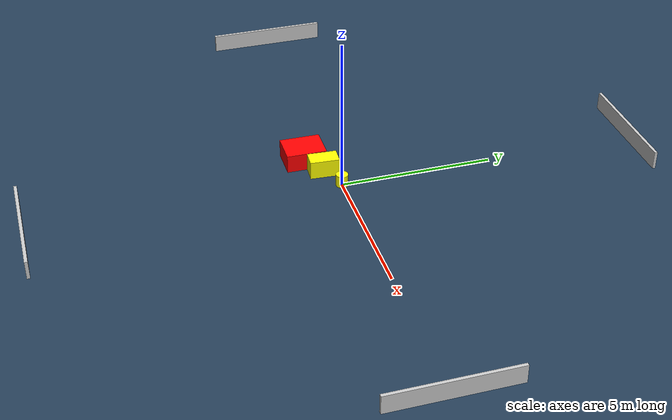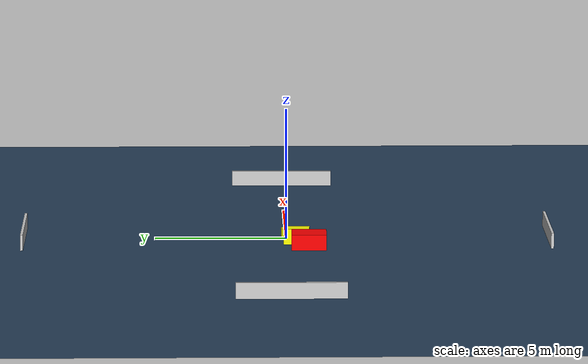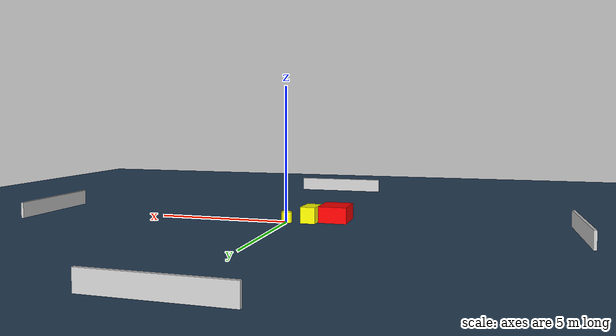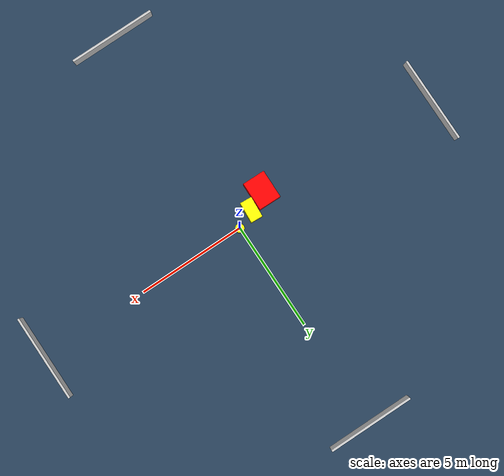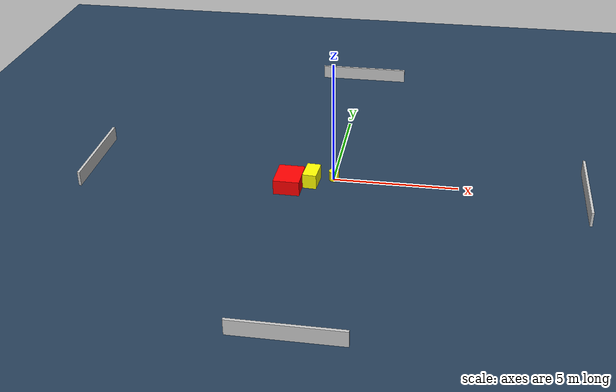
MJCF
<?xml version="1.0" ?>
<mujoco model="generated_environment">
  <option timestep="0.01" integrator="RK4" cone="elliptic"/>
  <default>
    <geom density="1"/>
  </default>
  <asset>
    <texture builtin="gradient" height="3072" name="skybox" rgb1="0.3 0.5 0.7" rgb2="0 0 0" type="skybox" width="512"/>
    <texture builtin="checker" height="300" name="groundplane" rgb1="0.2 0.3 0.4" rgb2="0.1 0.2 0.3" type="2d" width="300"/>
    <material name="groundplane" reflectance="0.2" texrepeat="5 5" texture="groundplane"/>
  </asset>
  <worldbody>
    <light dir="0 0 -1" directional="true" pos="0 0 1.5"/>
    <geom condim="3" friction="0.5 0.005 0.001" material="groundplane" name="floor" pos="0 0 0" size="0 0 0.05" type="plane"/>
    <body name="walls">
      <geom name="wall_1" condim="4" pos="-10.0 0.0 0.3" rgba="0.800000011920929 0.800000011920929 0.800000011920929 1.0" size="0.05 2.0 0.3" type="box"/>
      <geom name="wall_2" condim="4" pos="10.0 0.0 0.3" rgba="0.800000011920929 0.800000011920929 0.800000011920929 1.0" size="0.05 2.0 0.3" type="box"/>
      <geom name="wall_3" condim="4" pos="0.0 -10.0 0.3" rgba="0.800000011920929 0.800000011920929 0.800000011920929 1.0" size="2.0 0.05 0.3" type="box"/>
      <geom name="wall_4" condim="4" pos="0.0 10.0 0.3" rgba="0.800000011920929 0.800000011920929 0.800000011920929 1.0" size="2.0 0.05 0.3" type="box"/>
    </body>
    <body name="robot">
      <joint name="joint_x" type="slide" pos="0 0 0" axis="1 0 0"/>
      <joint name="joint_y" type="slide" pos="0 0 0" axis="0 1 0"/>
      <geom name="robot" type="cylinder" pos="0.0 0.0 0.2" size="0.2 0.2 0.0" mass="5.0" friction="1.0 0.005 0.0001" condim="4" rgba="1.0 1.0 0.0 1.0"/>
    </body>
    <body name="obstacle_1_movable">
      <geom name="obstacle_1_movable" condim="4" pos="-0.8414075746799573 -0.3759249920253908 0.3" euler="0 0 356.5582486548584" friction="0.0 0.005 0.001" rgba="1.0 1.0 0.0 1.0" size="0.27756869502389947 0.47946247091713057 0.3" type="box" mass="0.1"/>
      <joint type="free"/>
    </body>
    <body name="obstacle_2_static">
      <geom name="obstacle_2_static" condim="4" pos="-1.68089115137746 -0.8232893685836781 0.3" euler="0 0 89.3310678405742" friction="0.0 0.005 0.001" rgba="1.0 0.0 0.0 1.0" size="0.6592504640851344 0.5226266836421471 0.3" type="box"/>
    </body>
  </worldbody>
  <actuator>
    <motor name="actuator_x" joint="joint_x" gear="1" ctrlrange="-1 1"/>
    <motor name="actuator_y" joint="joint_y" gear="1" ctrlrange="-1 1"/>
  </actuator>
</mujoco>
